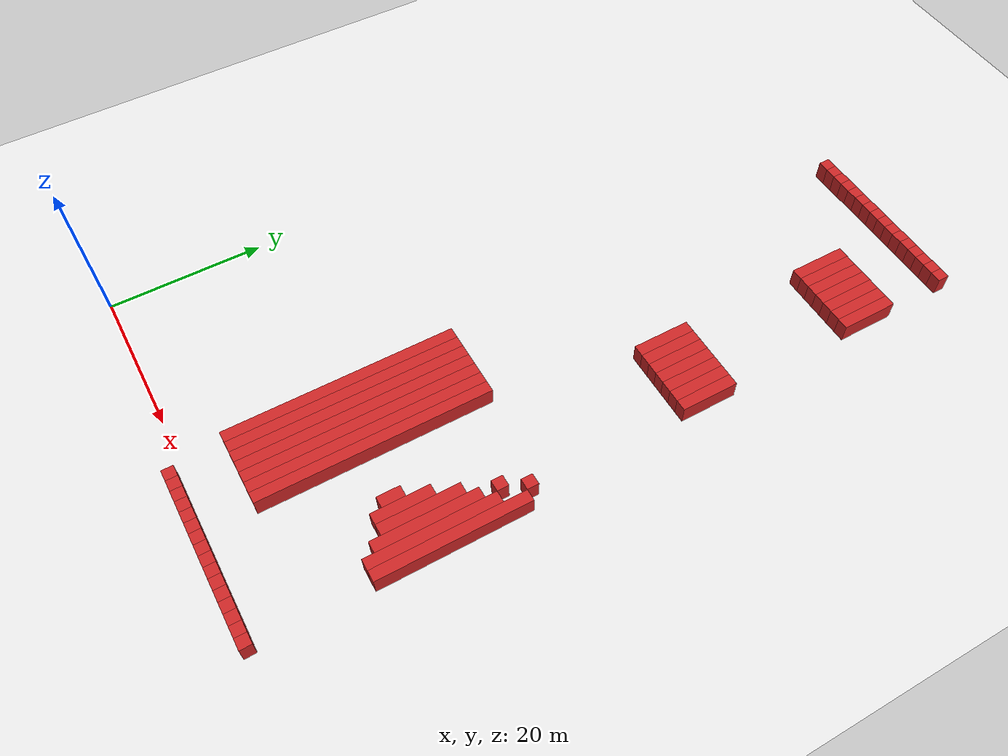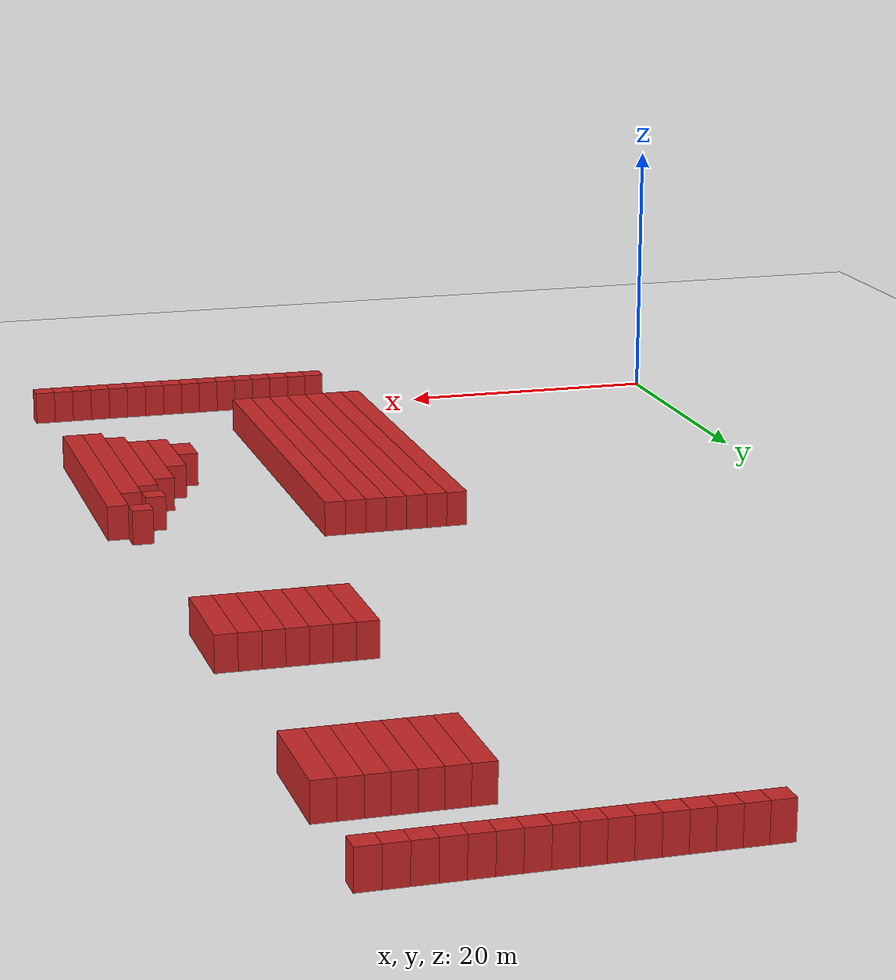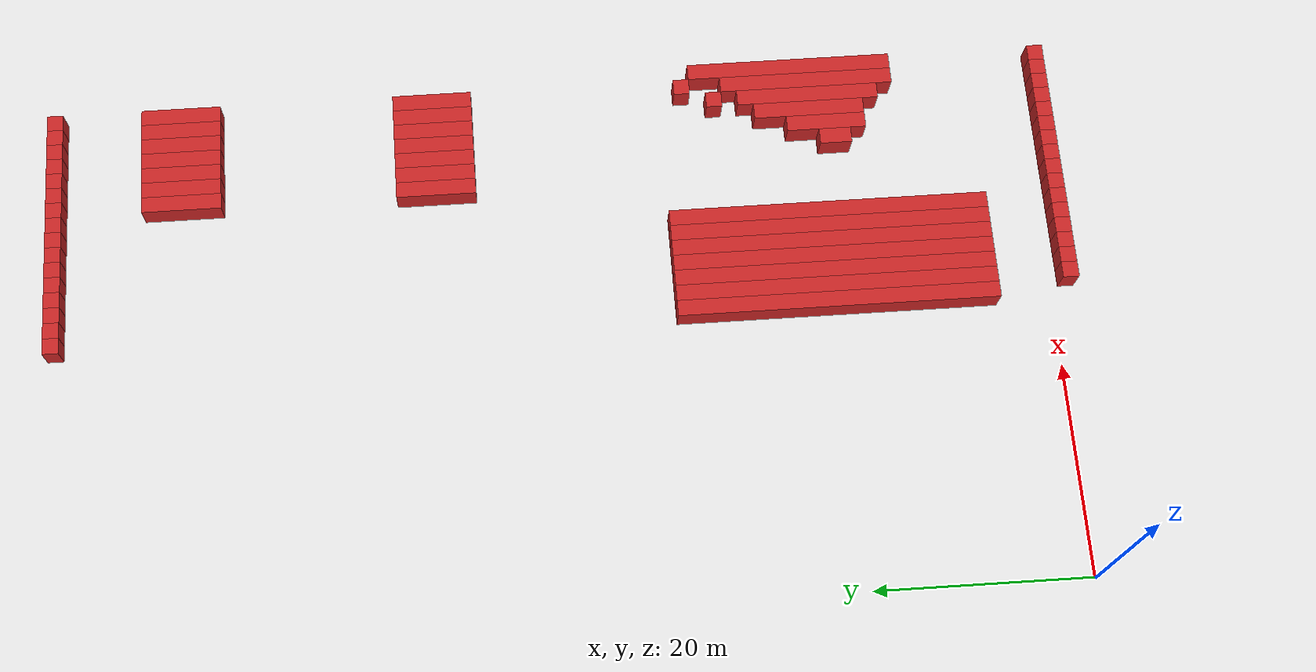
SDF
<sdf version="1.4">
 <world name="1_wall">
  <model name="ground_plane">
   <static>1</static>
   <link name="link">
    <collision name="collision">
     <geometry><plane><normal>0 0 1</normal><size>1000 1000</size></plane></geometry>
     <surface><friction><ode><mu>100</mu><mu2>50</mu2></ode></friction></surface>
    </collision>
    <visual name="visual">
     <cast_shadows>0</cast_shadows>
     <geometry><plane><normal>0 0 1</normal><size>10000 10000</size></plane></geometry>
     <material>
      <script><uri>file://media/materials/scripts/gazebo.material</uri><name>Gazebo/White</name></script>
     </material>
    </visual>
    <velocity_decay><linear>0</linear><angular>0</angular></velocity_decay>
   </link>
  </model>
  <model name="Wall_61">
   <static>1</static>
   <link name="Wall_61">
    <collision name="Wall_Collision_61">
     <geometry><box><size>30.0 1.5 2.5</size></box></geometry>
     <pose>0 0 1.25 0 -0 0</pose>
    </collision>
    <visual name="Wall_Visual_61">
     <pose>0 0 1.25 0 -0 0</pose>
     <geometry><box><size>30.0 1.5 2.5</size></box></geometry>
     <material>
      <script><uri>file://media/materials/scripts/gazebo.material</uri><name>Gazebo/Red</name></script>
     </material>
    </visual>
    <velocity_decay><linear>0</linear><angular>0</angular></velocity_decay>
    <pose>27.0 20.25 0 0 0 1.5707963267948966</pose>
   </link>
  </model>
  <model name="Wall_62">
   <static>1</static>
   <link name="Wall_62">
    <collision name="Wall_Collision_62">
     <geometry><box><size>1.5 1.5 2.5</size></box></geometry>
     <pose>0 0 1.25 0 -0 0</pose>
    </collision>
    <visual name="Wall_Visual_62">
     <pose>0 0 1.25 0 -0 0</pose>
     <geometry><box><size>1.5 1.5 2.5</size></box></geometry>
     <material>
      <script><uri>file://media/materials/scripts/gazebo.material</uri><name>Gazebo/Red</name></script>
     </material>
    </visual>
    <velocity_decay><linear>0</linear><angular>0</angular></velocity_decay>
    <pose>27.0 93.0 0 0 0 1.5707963267948966</pose>
   </link>
  </model>
  <model name="Wall_63">
   <static>1</static>
   <link name="Wall_63">
    <collision name="Wall_Collision_63">
     <geometry><box><size>1.5 1.5 2.5</size></box></geometry>
     <pose>0 0 1.25 0 -0 0</pose>
    </collision>
    <visual name="Wall_Visual_63">
     <pose>0 0 1.25 0 -0 0</pose>
     <geometry><box><size>1.5 1.5 2.5</size></box></geometry>
     <material>
      <script><uri>file://media/materials/scripts/gazebo.material</uri><name>Gazebo/Red</name></script>
     </material>
    </visual>
    <velocity_decay><linear>0</linear><angular>0</angular></velocity_decay>
    <pose>28.5 -1.5 0 0 0 1.5707963267948966</pose>
   </link>
  </model>
  <model name="Wall_64">
   <static>1</static>
   <link name="Wall_64">
    <collision name="Wall_Collision_64">
     <geometry><box><size>30.0 1.5 2.5</size></box></geometry>
     <pose>0 0 1.25 0 -0 0</pose>
    </collision>
    <visual name="Wall_Visual_64">
     <pose>0 0 1.25 0 -0 0</pose>
     <geometry><box><size>30.0 1.5 2.5</size></box></geometry>
     <material>
      <script><uri>file://media/materials/scripts/gazebo.material</uri><name>Gazebo/Red</name></script>
     </material>
    </visual>
    <velocity_decay><linear>0</linear><angular>0</angular></velocity_decay>
    <pose>28.5 20.25 0 0 0 1.5707963267948966</pose>
   </link>
  </model>
  <model name="Wall_65">
   <static>1</static>
   <link name="Wall_65">
    <collision name="Wall_Collision_65">
     <geometry><box><size>1.5 1.5 2.5</size></box></geometry>
     <pose>0 0 1.25 0 -0 0</pose>
    </collision>
    <visual name="Wall_Visual_65">
     <pose>0 0 1.25 0 -0 0</pose>
     <geometry><box><size>1.5 1.5 2.5</size></box></geometry>
     <material>
      <script><uri>file://media/materials/scripts/gazebo.material</uri><name>Gazebo/Red</name></script>
     </material>
    </visual>
    <velocity_decay><linear>0</linear><angular>0</angular></velocity_decay>
    <pose>28.5 93.0 0 0 0 1.5707963267948966</pose>
   </link>
  </model>
  <model name="Wall_66">
   <static>1</static>
   <link name="Wall_66">
    <collision name="Wall_Collision_66">
     <geometry><box><size>1.5 1.5 2.5</size></box></geometry>
     <pose>0 0 1.25 0 -0 0</pose>
    </collision>
    <visual name="Wall_Visual_66">
     <pose>0 0 1.25 0 -0 0</pose>
     <geometry><box><size>1.5 1.5 2.5</size></box></geometry>
     <material>
      <script><uri>file://media/materials/scripts/gazebo.material</uri><name>Gazebo/Red</name></script>
     </material>
    </visual>
    <velocity_decay><linear>0</linear><angular>0</angular></velocity_decay>
    <pose>30.0 -1.5 0 0 0 1.5707963267948966</pose>
   </link>
  </model>
  <model name="Wall_67">
   <static>1</static>
   <link name="Wall_67">
    <collision name="Wall_Collision_67">
     <geometry><box><size>30.0 1.5 2.5</size></box></geometry>
     <pose>0 0 1.25 0 -0 0</pose>
    </collision>
    <visual name="Wall_Visual_67">
     <pose>0 0 1.25 0 -0 0</pose>
     <geometry><box><size>30.0 1.5 2.5</size></box></geometry>
     <material>
      <script><uri>file://media/materials/scripts/gazebo.material</uri><name>Gazebo/Red</name></script>
     </material>
    </visual>
    <velocity_decay><linear>0</linear><angular>0</angular></velocity_decay>
    <pose>30.0 20.25 0 0 0 1.5707963267948966</pose>
   </link>
  </model>
  <model name="Wall_68">
   <static>1</static>
   <link name="Wall_68">
    <collision name="Wall_Collision_68">
     <geometry><box><size>1.5 1.5 2.5</size></box></geometry>
     <pose>0 0 1.25 0 -0 0</pose>
    </collision>
    <visual name="Wall_Visual_68">
     <pose>0 0 1.25 0 -0 0</pose>
     <geometry><box><size>1.5 1.5 2.5</size></box></geometry>
     <material>
      <script><uri>file://media/materials/scripts/gazebo.material</uri><name>Gazebo/Red</name></script>
     </material>
    </visual>
    <velocity_decay><linear>0</linear><angular>0</angular></velocity_decay>
    <pose>30.0 93.0 0 0 0 1.5707963267948966</pose>
   </link>
  </model>
  <model name="Wall_69">
   <static>1</static>
   <link name="Wall_69">
    <collision name="Wall_Collision_69">
     <geometry><box><size>1.5 1.5 2.5</size></box></geometry>
     <pose>0 0 1.25 0 -0 0</pose>
    </collision>
    <visual name="Wall_Visual_69">
     <pose>0 0 1.25 0 -0 0</pose>
     <geometry><box><size>1.5 1.5 2.5</size></box></geometry>
     <material>
      <script><uri>file://media/materials/scripts/gazebo.material</uri><name>Gazebo/Red</name></script>
     </material>
    </visual>
    <velocity_decay><linear>0</linear><angular>0</angular></velocity_decay>
    <pose>31.5 -1.5 0 0 0 1.5707963267948966</pose>
   </link>
  </model>
  <model name="Wall_70">
   <static>1</static>
   <link name="Wall_70">
    <collision name="Wall_Collision_70">
     <geometry><box><size>30.0 1.5 2.5</size></box></geometry>
     <pose>0 0 1.25 0 -0 0</pose>
    </collision>
    <visual name="Wall_Visual_70">
     <pose>0 0 1.25 0 -0 0</pose>
     <geometry><box><size>30.0 1.5 2.5</size></box></geometry>
     <material>
      <script><uri>file://media/materials/scripts/gazebo.material</uri><name>Gazebo/Red</name></script>
     </material>
    </visual>
    <velocity_decay><linear>0</linear><angular>0</angular></velocity_decay>
    <pose>31.5 20.25 0 0 0 1.5707963267948966</pose>
   </link>
  </model>
  <model name="Wall_71">
   <static>1</static>
   <link name="Wall_71">
    <collision name="Wall_Collision_71">
     <geometry><box><size>1.5 1.5 2.5</size></box></geometry>
     <pose>0 0 1.25 0 -0 0</pose>
    </collision>
    <visual name="Wall_Visual_71">
     <pose>0 0 1.25 0 -0 0</pose>
     <geometry><box><size>1.5 1.5 2.5</size></box></geometry>
     <material>
      <script><uri>file://media/materials/scripts/gazebo.material</uri><name>Gazebo/Red</name></script>
     </material>
    </visual>
    <velocity_decay><linear>0</linear><angular>0</angular></velocity_decay>
    <pose>31.5 93.0 0 0 0 1.5707963267948966</pose>
   </link>
  </model>
  <model name="Wall_72">
   <static>1</static>
   <link name="Wall_72">
    <collision name="Wall_Collision_72">
     <geometry><box><size>1.5 1.5 2.5</size></box></geometry>
     <pose>0 0 1.25 0 -0 0</pose>
    </collision>
    <visual name="Wall_Visual_72">
     <pose>0 0 1.25 0 -0 0</pose>
     <geometry><box><size>1.5 1.5 2.5</size></box></geometry>
     <material>
      <script><uri>file://media/materials/scripts/gazebo.material</uri><name>Gazebo/Red</name></script>
     </material>
    </visual>
    <velocity_decay><linear>0</linear><angular>0</angular></velocity_decay>
    <pose>33.0 -1.5 0 0 0 1.5707963267948966</pose>
   </link>
  </model>
  <model name="Wall_73">
   <static>1</static>
   <link name="Wall_73">
    <collision name="Wall_Collision_73">
     <geometry><box><size>30.0 1.5 2.5</size></box></geometry>
     <pose>0 0 1.25 0 -0 0</pose>
    </collision>
    <visual name="Wall_Visual_73">
     <pose>0 0 1.25 0 -0 0</pose>
     <geometry><box><size>30.0 1.5 2.5</size></box></geometry>
     <material>
      <script><uri>file://media/materials/scripts/gazebo.material</uri><name>Gazebo/Red</name></script>
     </material>
    </visual>
    <velocity_decay><linear>0</linear><angular>0</angular></velocity_decay>
    <pose>33.0 20.25 0 0 0 1.5707963267948966</pose>
   </link>
  </model>
  <model name="Wall_74">
   <static>1</static>
   <link name="Wall_74">
    <collision name="Wall_Collision_74">
     <geometry><box><size>1.5 1.5 2.5</size></box></geometry>
     <pose>0 0 1.25 0 -0 0</pose>
    </collision>
    <visual name="Wall_Visual_74">
     <pose>0 0 1.25 0 -0 0</pose>
     <geometry><box><size>1.5 1.5 2.5</size></box></geometry>
     <material>
      <script><uri>file://media/materials/scripts/gazebo.material</uri><name>Gazebo/Red</name></script>
     </material>
    </visual>
    <velocity_decay><linear>0</linear><angular>0</angular></velocity_decay>
    <pose>33.0 93.0 0 0 0 1.5707963267948966</pose>
   </link>
  </model>
  <model name="Wall_75">
   <static>1</static>
   <link name="Wall_75">
    <collision name="Wall_Collision_75">
     <geometry><box><size>1.5 1.5 2.5</size></box></geometry>
     <pose>0 0 1.25 0 -0 0</pose>
    </collision>
    <visual name="Wall_Visual_75">
     <pose>0 0 1.25 0 -0 0</pose>
     <geometry><box><size>1.5 1.5 2.5</size></box></geometry>
     <material>
      <script><uri>file://media/materials/scripts/gazebo.material</uri><name>Gazebo/Red</name></script>
     </material>
    </visual>
    <velocity_decay><linear>0</linear><angular>0</angular></velocity_decay>
    <pose>34.5 -1.5 0 0 0 1.5707963267948966</pose>
   </link>
  </model>
  <model name="Wall_76">
   <static>1</static>
   <link name="Wall_76">
    <collision name="Wall_Collision_76">
     <geometry><box><size>30.0 1.5 2.5</size></box></geometry>
     <pose>0 0 1.25 0 -0 0</pose>
    </collision>
    <visual name="Wall_Visual_76">
     <pose>0 0 1.25 0 -0 0</pose>
     <geometry><box><size>30.0 1.5 2.5</size></box></geometry>
     <material>
      <script><uri>file://media/materials/scripts/gazebo.material</uri><name>Gazebo/Red</name></script>
     </material>
    </visual>
    <velocity_decay><linear>0</linear><angular>0</angular></velocity_decay>
    <pose>34.5 20.25 0 0 0 1.5707963267948966</pose>
   </link>
  </model>
  <model name="Wall_77">
   <static>1</static>
   <link name="Wall_77">
    <collision name="Wall_Collision_77">
     <geometry><box><size>1.5 1.5 2.5</size></box></geometry>
     <pose>0 0 1.25 0 -0 0</pose>
    </collision>
    <visual name="Wall_Visual_77">
     <pose>0 0 1.25 0 -0 0</pose>
     <geometry><box><size>1.5 1.5 2.5</size></box></geometry>
     <material>
      <script><uri>file://media/materials/scripts/gazebo.material</uri><name>Gazebo/Red</name></script>
     </material>
    </visual>
    <velocity_decay><linear>0</linear><angular>0</angular></velocity_decay>
    <pose>34.5 93.0 0 0 0 1.5707963267948966</pose>
   </link>
  </model>
  <model name="Wall_78">
   <static>1</static>
   <link name="Wall_78">
    <collision name="Wall_Collision_78">
     <geometry><box><size>1.5 1.5 2.5</size></box></geometry>
     <pose>0 0 1.25 0 -0 0</pose>
    </collision>
    <visual name="Wall_Visual_78">
     <pose>0 0 1.25 0 -0 0</pose>
     <geometry><box><size>1.5 1.5 2.5</size></box></geometry>
     <material>
      <script><uri>file://media/materials/scripts/gazebo.material</uri><name>Gazebo/Red</name></script>
     </material>
    </visual>
    <velocity_decay><linear>0</linear><angular>0</angular></velocity_decay>
    <pose>36.0 -1.5 0 0 0 1.5707963267948966</pose>
   </link>
  </model>
  <model name="Wall_79">
   <static>1</static>
   <link name="Wall_79">
    <collision name="Wall_Collision_79">
     <geometry><box><size>30.0 1.5 2.5</size></box></geometry>
     <pose>0 0 1.25 0 -0 0</pose>
    </collision>
    <visual name="Wall_Visual_79">
     <pose>0 0 1.25 0 -0 0</pose>
     <geometry><box><size>30.0 1.5 2.5</size></box></geometry>
     <material>
      <script><uri>file://media/materials/scripts/gazebo.material</uri><name>Gazebo/Red</name></script>
     </material>
    </visual>
    <velocity_decay><linear>0</linear><angular>0</angular></velocity_decay>
    <pose>36.0 20.25 0 0 0 1.5707963267948966</pose>
   </link>
  </model>
  <model name="Wall_80">
   <static>1</static>
   <link name="Wall_80">
    <collision name="Wall_Collision_80">
     <geometry><box><size>1.5 1.5 2.5</size></box></geometry>
     <pose>0 0 1.25 0 -0 0</pose>
    </collision>
    <visual name="Wall_Visual_80">
     <pose>0 0 1.25 0 -0 0</pose>
     <geometry><box><size>1.5 1.5 2.5</size></box></geometry>
     <material>
      <script><uri>file://media/materials/scripts/gazebo.material</uri><name>Gazebo/Red</name></script>
     </material>
    </visual>
    <velocity_decay><linear>0</linear><angular>0</angular></velocity_decay>
    <pose>36.0 93.0 0 0 0 1.5707963267948966</pose>
   </link>
  </model>
  <model name="Wall_81">
   <static>1</static>
   <link name="Wall_81">
    <collision name="Wall_Collision_81">
     <geometry><box><size>1.5 1.5 2.5</size></box></geometry>
     <pose>0 0 1.25 0 -0 0</pose>
    </collision>
    <visual name="Wall_Visual_81">
     <pose>0 0 1.25 0 -0 0</pose>
     <geometry><box><size>1.5 1.5 2.5</size></box></geometry>
     <material>
      <script><uri>file://media/materials/scripts/gazebo.material</uri><name>Gazebo/Red</name></script>
     </material>
    </visual>
    <velocity_decay><linear>0</linear><angular>0</angular></velocity_decay>
    <pose>37.5 -1.5 0 0 0 1.5707963267948966</pose>
   </link>
  </model>
  <model name="Wall_82">
   <static>1</static>
   <link name="Wall_82">
    <collision name="Wall_Collision_82">
     <geometry><box><size>1.5 1.5 2.5</size></box></geometry>
     <pose>0 0 1.25 0 -0 0</pose>
    </collision>
    <visual name="Wall_Visual_82">
     <pose>0 0 1.25 0 -0 0</pose>
     <geometry><box><size>1.5 1.5 2.5</size></box></geometry>
     <material>
      <script><uri>file://media/materials/scripts/gazebo.material</uri><name>Gazebo/Red</name></script>
     </material>
    </visual>
    <velocity_decay><linear>0</linear><angular>0</angular></velocity_decay>
    <pose>37.5 93.0 0 0 0 1.5707963267948966</pose>
   </link>
  </model>
  <model name="Wall_83">
   <static>1</static>
   <link name="Wall_83">
    <collision name="Wall_Collision_83">
     <geometry><box><size>1.5 1.5 2.5</size></box></geometry>
     <pose>0 0 1.25 0 -0 0</pose>
    </collision>
    <visual name="Wall_Visual_83">
     <pose>0 0 1.25 0 -0 0</pose>
     <geometry><box><size>1.5 1.5 2.5</size></box></geometry>
     <material>
      <script><uri>file://media/materials/scripts/gazebo.material</uri><name>Gazebo/Red</name></script>
     </material>
    </visual>
    <velocity_decay><linear>0</linear><angular>0</angular></velocity_decay>
    <pose>39.0 -1.5 0 0 0 1.5707963267948966</pose>
   </link>
  </model>
  <model name="Wall_84">
   <static>1</static>
   <link name="Wall_84">
    <collision name="Wall_Collision_84">
     <geometry><box><size>1.5 1.5 2.5</size></box></geometry>
     <pose>0 0 1.25 0 -0 0</pose>
    </collision>
    <visual name="Wall_Visual_84">
     <pose>0 0 1.25 0 -0 0</pose>
     <geometry><box><size>1.5 1.5 2.5</size></box></geometry>
     <material>
      <script><uri>file://media/materials/scripts/gazebo.material</uri><name>Gazebo/Red</name></script>
     </material>
    </visual>
    <velocity_decay><linear>0</linear><angular>0</angular></velocity_decay>
    <pose>39.0 93.0 0 0 0 1.5707963267948966</pose>
   </link>
  </model>
  <model name="Wall_85">
   <static>1</static>
   <link name="Wall_85">
    <collision name="Wall_Collision_85">
     <geometry><box><size>1.5 1.5 2.5</size></box></geometry>
     <pose>0 0 1.25 0 -0 0</pose>
    </collision>
    <visual name="Wall_Visual_85">
     <pose>0 0 1.25 0 -0 0</pose>
     <geometry><box><size>1.5 1.5 2.5</size></box></geometry>
     <material>
      <script><uri>file://media/materials/scripts/gazebo.material</uri><name>Gazebo/Red</name></script>
     </material>
    </visual>
    <velocity_decay><linear>0</linear><angular>0</angular></velocity_decay>
    <pose>40.5 -1.5 0 0 0 1.5707963267948966</pose>
   </link>
  </model>
  <model name="Wall_86">
   <static>1</static>
   <link name="Wall_86">
    <collision name="Wall_Collision_86">
     <geometry><box><size>7.5 1.5 2.5</size></box></geometry>
     <pose>0 0 1.25 0 -0 0</pose>
    </collision>
    <visual name="Wall_Visual_86">
     <pose>0 0 1.25 0 -0 0</pose>
     <geometry><box><size>7.5 1.5 2.5</size></box></geometry>
     <material>
      <script><uri>file://media/materials/scripts/gazebo.material</uri><name>Gazebo/Red</name></script>
     </material>
    </visual>
    <velocity_decay><linear>0</linear><angular>0</angular></velocity_decay>
    <pose>40.5 57.0 0 0 0 1.5707963267948966</pose>
   </link>
  </model>
  <model name="Wall_87">
   <static>1</static>
   <link name="Wall_87">
    <collision name="Wall_Collision_87">
     <geometry><box><size>7.5 1.5 2.5</size></box></geometry>
     <pose>0 0 1.25 0 -0 0</pose>
    </collision>
    <visual name="Wall_Visual_87">
     <pose>0 0 1.25 0 -0 0</pose>
     <geometry><box><size>7.5 1.5 2.5</size></box></geometry>
     <material>
      <script><uri>file://media/materials/scripts/gazebo.material</uri><name>Gazebo/Red</name></script>
     </material>
    </visual>
    <velocity_decay><linear>0</linear><angular>0</angular></velocity_decay>
    <pose>40.5 81.0 0 0 0 1.5707963267948966</pose>
   </link>
  </model>
  <model name="Wall_88">
   <static>1</static>
   <link name="Wall_88">
    <collision name="Wall_Collision_88">
     <geometry><box><size>1.5 1.5 2.5</size></box></geometry>
     <pose>0 0 1.25 0 -0 0</pose>
    </collision>
    <visual name="Wall_Visual_88">
     <pose>0 0 1.25 0 -0 0</pose>
     <geometry><box><size>1.5 1.5 2.5</size></box></geometry>
     <material>
      <script><uri>file://media/materials/scripts/gazebo.material</uri><name>Gazebo/Red</name></script>
     </material>
    </visual>
    <velocity_decay><linear>0</linear><angular>0</angular></velocity_decay>
    <pose>40.5 93.0 0 0 0 1.5707963267948966</pose>
   </link>
  </model>
  <model name="Wall_89">
   <static>1</static>
   <link name="Wall_89">
    <collision name="Wall_Collision_89">
     <geometry><box><size>1.5 1.5 2.5</size></box></geometry>
     <pose>0 0 1.25 0 -0 0</pose>
    </collision>
    <visual name="Wall_Visual_89">
     <pose>0 0 1.25 0 -0 0</pose>
     <geometry><box><size>1.5 1.5 2.5</size></box></geometry>
     <material>
      <script><uri>file://media/materials/scripts/gazebo.material</uri><name>Gazebo/Red</name></script>
     </material>
    </visual>
    <velocity_decay><linear>0</linear><angular>0</angular></velocity_decay>
    <pose>42.0 -1.5 0 0 0 1.5707963267948966</pose>
   </link>
  </model>
  <model name="Wall_90">
   <static>1</static>
   <link name="Wall_90">
    <collision name="Wall_Collision_90">
     <geometry><box><size>7.5 1.5 2.5</size></box></geometry>
     <pose>0 0 1.25 0 -0 0</pose>
    </collision>
    <visual name="Wall_Visual_90">
     <pose>0 0 1.25 0 -0 0</pose>
     <geometry><box><size>7.5 1.5 2.5</size></box></geometry>
     <material>
      <script><uri>file://media/materials/scripts/gazebo.material</uri><name>Gazebo/Red</name></script>
     </material>
    </visual>
    <velocity_decay><linear>0</linear><angular>0</angular></velocity_decay>
    <pose>42.0 57.0 0 0 0 1.5707963267948966</pose>
   </link>
  </model>
  <model name="Wall_91">
   <static>1</static>
   <link name="Wall_91">
    <collision name="Wall_Collision_91">
     <geometry><box><size>7.5 1.5 2.5</size></box></geometry>
     <pose>0 0 1.25 0 -0 0</pose>
    </collision>
    <visual name="Wall_Visual_91">
     <pose>0 0 1.25 0 -0 0</pose>
     <geometry><box><size>7.5 1.5 2.5</size></box></geometry>
     <material>
      <script><uri>file://media/materials/scripts/gazebo.material</uri><name>Gazebo/Red</name></script>
     </material>
    </visual>
    <velocity_decay><linear>0</linear><angular>0</angular></velocity_decay>
    <pose>42.0 81.0 0 0 0 1.5707963267948966</pose>
   </link>
  </model>
  <model name="Wall_92">
   <static>1</static>
   <link name="Wall_92">
    <collision name="Wall_Collision_92">
     <geometry><box><size>1.5 1.5 2.5</size></box></geometry>
     <pose>0 0 1.25 0 -0 0</pose>
    </collision>
    <visual name="Wall_Visual_92">
     <pose>0 0 1.25 0 -0 0</pose>
     <geometry><box><size>1.5 1.5 2.5</size></box></geometry>
     <material>
      <script><uri>file://media/materials/scripts/gazebo.material</uri><name>Gazebo/Red</name></script>
     </material>
    </visual>
    <velocity_decay><linear>0</linear><angular>0</angular></velocity_decay>
    <pose>42.0 93.0 0 0 0 1.5707963267948966</pose>
   </link>
  </model>
  <model name="Wall_93">
   <static>1</static>
   <link name="Wall_93">
    <collision name="Wall_Collision_93">
     <geometry><box><size>1.5 1.5 2.5</size></box></geometry>
     <pose>0 0 1.25 0 -0 0</pose>
    </collision>
    <visual name="Wall_Visual_93">
     <pose>0 0 1.25 0 -0 0</pose>
     <geometry><box><size>1.5 1.5 2.5</size></box></geometry>
     <material>
      <script><uri>file://media/materials/scripts/gazebo.material</uri><name>Gazebo/Red</name></script>
     </material>
    </visual>
    <velocity_decay><linear>0</linear><angular>0</angular></velocity_decay>
    <pose>43.5 -1.5 0 0 0 1.5707963267948966</pose>
   </link>
  </model>
  <model name="Wall_94">
   <static>1</static>
   <link name="Wall_94">
    <collision name="Wall_Collision_94">
     <geometry><box><size>3.0 1.5 2.5</size></box></geometry>
     <pose>0 0 1.25 0 -0 0</pose>
    </collision>
    <visual name="Wall_Visual_94">
     <pose>0 0 1.25 0 -0 0</pose>
     <geometry><box><size>3.0 1.5 2.5</size></box></geometry>
     <material>
      <script><uri>file://media/materials/scripts/gazebo.material</uri><name>Gazebo/Red</name></script>
     </material>
    </visual>
    <velocity_decay><linear>0</linear><angular>0</angular></velocity_decay>
    <pose>43.5 18.75 0 0 0 1.5707963267948966</pose>
   </link>
  </model>
  <model name="Wall_95">
   <static>1</static>
   <link name="Wall_95">
    <collision name="Wall_Collision_95">
     <geometry><box><size>7.5 1.5 2.5</size></box></geometry>
     <pose>0 0 1.25 0 -0 0</pose>
    </collision>
    <visual name="Wall_Visual_95">
     <pose>0 0 1.25 0 -0 0</pose>
     <geometry><box><size>7.5 1.5 2.5</size></box></geometry>
     <material>
      <script><uri>file://media/materials/scripts/gazebo.material</uri><name>Gazebo/Red</name></script>
     </material>
    </visual>
    <velocity_decay><linear>0</linear><angular>0</angular></velocity_decay>
    <pose>43.5 57.0 0 0 0 1.5707963267948966</pose>
   </link>
  </model>
  <model name="Wall_96">
   <static>1</static>
   <link name="Wall_96">
    <collision name="Wall_Collision_96">
     <geometry><box><size>7.5 1.5 2.5</size></box></geometry>
     <pose>0 0 1.25 0 -0 0</pose>
    </collision>
    <visual name="Wall_Visual_96">
     <pose>0 0 1.25 0 -0 0</pose>
     <geometry><box><size>7.5 1.5 2.5</size></box></geometry>
     <material>
      <script><uri>file://media/materials/scripts/gazebo.material</uri><name>Gazebo/Red</name></script>
     </material>
    </visual>
    <velocity_decay><linear>0</linear><angular>0</angular></velocity_decay>
    <pose>43.5 81.0 0 0 0 1.5707963267948966</pose>
   </link>
  </model>
  <model name="Wall_97">
   <static>1</static>
   <link name="Wall_97">
    <collision name="Wall_Collision_97">
     <geometry><box><size>1.5 1.5 2.5</size></box></geometry>
     <pose>0 0 1.25 0 -0 0</pose>
    </collision>
    <visual name="Wall_Visual_97">
     <pose>0 0 1.25 0 -0 0</pose>
     <geometry><box><size>1.5 1.5 2.5</size></box></geometry>
     <material>
      <script><uri>file://media/materials/scripts/gazebo.material</uri><name>Gazebo/Red</name></script>
     </material>
    </visual>
    <velocity_decay><linear>0</linear><angular>0</angular></velocity_decay>
    <pose>43.5 93.0 0 0 0 1.5707963267948966</pose>
   </link>
  </model>
  <model name="Wall_98">
   <static>1</static>
   <link name="Wall_98">
    <collision name="Wall_Collision_98">
     <geometry><box><size>1.5 1.5 2.5</size></box></geometry>
     <pose>0 0 1.25 0 -0 0</pose>
    </collision>
    <visual name="Wall_Visual_98">
     <pose>0 0 1.25 0 -0 0</pose>
     <geometry><box><size>1.5 1.5 2.5</size></box></geometry>
     <material>
      <script><uri>file://media/materials/scripts/gazebo.material</uri><name>Gazebo/Red</name></script>
     </material>
    </visual>
    <velocity_decay><linear>0</linear><angular>0</angular></velocity_decay>
    <pose>45.0 -1.5 0 0 0 1.5707963267948966</pose>
   </link>
  </model>
  <model name="Wall_99">
   <static>1</static>
   <link name="Wall_99">
    <collision name="Wall_Collision_99">
     <geometry><box><size>7.5 1.5 2.5</size></box></geometry>
     <pose>0 0 1.25 0 -0 0</pose>
    </collision>
    <visual name="Wall_Visual_99">
     <pose>0 0 1.25 0 -0 0</pose>
     <geometry><box><size>7.5 1.5 2.5</size></box></geometry>
     <material>
      <script><uri>file://media/materials/scripts/gazebo.material</uri><name>Gazebo/Red</name></script>
     </material>
    </visual>
    <velocity_decay><linear>0</linear><angular>0</angular></velocity_decay>
    <pose>45.0 19.5 0 0 0 1.5707963267948966</pose>
   </link>
  </model>
  <model name="Wall_100">
   <static>1</static>
   <link name="Wall_100">
    <collision name="Wall_Collision_100">
     <geometry><box><size>7.5 1.5 2.5</size></box></geometry>
     <pose>0 0 1.25 0 -0 0</pose>
    </collision>
    <visual name="Wall_Visual_100">
     <pose>0 0 1.25 0 -0 0</pose>
     <geometry><box><size>7.5 1.5 2.5</size></box></geometry>
     <material>
      <script><uri>file://media/materials/scripts/gazebo.material</uri><name>Gazebo/Red</name></script>
     </material>
    </visual>
    <velocity_decay><linear>0</linear><angular>0</angular></velocity_decay>
    <pose>45.0 57.0 0 0 0 1.5707963267948966</pose>
   </link>
  </model>
  <model name="Wall_101">
   <static>1</static>
   <link name="Wall_101">
    <collision name="Wall_Collision_101">
     <geometry><box><size>7.5 1.5 2.5</size></box></geometry>
     <pose>0 0 1.25 0 -0 0</pose>
    </collision>
    <visual name="Wall_Visual_101">
     <pose>0 0 1.25 0 -0 0</pose>
     <geometry><box><size>7.5 1.5 2.5</size></box></geometry>
     <material>
      <script><uri>file://media/materials/scripts/gazebo.material</uri><name>Gazebo/Red</name></script>
     </material>
    </visual>
    <velocity_decay><linear>0</linear><angular>0</angular></velocity_decay>
    <pose>45.0 81.0 0 0 0 1.5707963267948966</pose>
   </link>
  </model>
  <model name="Wall_102">
   <static>1</static>
   <link name="Wall_102">
    <collision name="Wall_Collision_102">
     <geometry><box><size>1.5 1.5 2.5</size></box></geometry>
     <pose>0 0 1.25 0 -0 0</pose>
    </collision>
    <visual name="Wall_Visual_102">
     <pose>0 0 1.25 0 -0 0</pose>
     <geometry><box><size>1.5 1.5 2.5</size></box></geometry>
     <material>
      <script><uri>file://media/materials/scripts/gazebo.material</uri><name>Gazebo/Red</name></script>
     </material>
    </visual>
    <velocity_decay><linear>0</linear><angular>0</angular></velocity_decay>
    <pose>45.0 93.0 0 0 0 1.5707963267948966</pose>
   </link>
  </model>
  <model name="Wall_103">
   <static>1</static>
   <link name="Wall_103">
    <collision name="Wall_Collision_103">
     <geometry><box><size>1.5 1.5 2.5</size></box></geometry>
     <pose>0 0 1.25 0 -0 0</pose>
    </collision>
    <visual name="Wall_Visual_103">
     <pose>0 0 1.25 0 -0 0</pose>
     <geometry><box><size>1.5 1.5 2.5</size></box></geometry>
     <material>
      <script><uri>file://media/materials/scripts/gazebo.material</uri><name>Gazebo/Red</name></script>
     </material>
    </visual>
    <velocity_decay><linear>0</linear><angular>0</angular></velocity_decay>
    <pose>46.5 -1.5 0 0 0 1.5707963267948966</pose>
   </link>
  </model>
  <model name="Wall_104">
   <static>1</static>
   <link name="Wall_104">
    <collision name="Wall_Collision_104">
     <geometry><box><size>10.5 1.5 2.5</size></box></geometry>
     <pose>0 0 1.25 0 -0 0</pose>
    </collision>
    <visual name="Wall_Visual_104">
     <pose>0 0 1.25 0 -0 0</pose>
     <geometry><box><size>10.5 1.5 2.5</size></box></geometry>
     <material>
      <script><uri>file://media/materials/scripts/gazebo.material</uri><name>Gazebo/Red</name></script>
     </material>
    </visual>
    <velocity_decay><linear>0</linear><angular>0</angular></velocity_decay>
    <pose>46.5 21.0 0 0 0 1.5707963267948966</pose>
   </link>
  </model>
  <model name="Wall_105">
   <static>1</static>
   <link name="Wall_105">
    <collision name="Wall_Collision_105">
     <geometry><box><size>7.5 1.5 2.5</size></box></geometry>
     <pose>0 0 1.25 0 -0 0</pose>
    </collision>
    <visual name="Wall_Visual_105">
     <pose>0 0 1.25 0 -0 0</pose>
     <geometry><box><size>7.5 1.5 2.5</size></box></geometry>
     <material>
      <script><uri>file://media/materials/scripts/gazebo.material</uri><name>Gazebo/Red</name></script>
     </material>
    </visual>
    <velocity_decay><linear>0</linear><angular>0</angular></velocity_decay>
    <pose>46.5 57.0 0 0 0 1.5707963267948966</pose>
   </link>
  </model>
  <model name="Wall_106">
   <static>1</static>
   <link name="Wall_106">
    <collision name="Wall_Collision_106">
     <geometry><box><size>7.5 1.5 2.5</size></box></geometry>
     <pose>0 0 1.25 0 -0 0</pose>
    </collision>
    <visual name="Wall_Visual_106">
     <pose>0 0 1.25 0 -0 0</pose>
     <geometry><box><size>7.5 1.5 2.5</size></box></geometry>
     <material>
      <script><uri>file://media/materials/scripts/gazebo.material</uri><name>Gazebo/Red</name></script>
     </material>
    </visual>
    <velocity_decay><linear>0</linear><angular>0</angular></velocity_decay>
    <pose>46.5 81.0 0 0 0 1.5707963267948966</pose>
   </link>
  </model>
  <model name="Wall_107">
   <static>1</static>
   <link name="Wall_107">
    <collision name="Wall_Collision_107">
     <geometry><box><size>1.5 1.5 2.5</size></box></geometry>
     <pose>0 0 1.25 0 -0 0</pose>
    </collision>
    <visual name="Wall_Visual_107">
     <pose>0 0 1.25 0 -0 0</pose>
     <geometry><box><size>1.5 1.5 2.5</size></box></geometry>
     <material>
      <script><uri>file://media/materials/scripts/gazebo.material</uri><name>Gazebo/Red</name></script>
     </material>
    </visual>
    <velocity_decay><linear>0</linear><angular>0</angular></velocity_decay>
    <pose>46.5 93.0 0 0 0 1.5707963267948966</pose>
   </link>
  </model>
  <model name="Wall_108">
   <static>1</static>
   <link name="Wall_108">
    <collision name="Wall_Collision_108">
     <geometry><box><size>1.5 1.5 2.5</size></box></geometry>
     <pose>0 0 1.25 0 -0 0</pose>
    </collision>
    <visual name="Wall_Visual_108">
     <pose>0 0 1.25 0 -0 0</pose>
     <geometry><box><size>1.5 1.5 2.5</size></box></geometry>
     <material>
      <script><uri>file://media/materials/scripts/gazebo.material</uri><name>Gazebo/Red</name></script>
     </material>
    </visual>
    <velocity_decay><linear>0</linear><angular>0</angular></velocity_decay>
    <pose>48.0 -1.5 0 0 0 1.5707963267948966</pose>
   </link>
  </model>
  <model name="Wall_109">
   <static>1</static>
   <link name="Wall_109">
    <collision name="Wall_Collision_109">
     <geometry><box><size>13.5 1.5 2.5</size></box></geometry>
     <pose>0 0 1.25 0 -0 0</pose>
    </collision>
    <visual name="Wall_Visual_109">
     <pose>0 0 1.25 0 -0 0</pose>
     <geometry><box><size>13.5 1.5 2.5</size></box></geometry>
     <material>
      <script><uri>file://media/materials/scripts/gazebo.material</uri><name>Gazebo/Red</name></script>
     </material>
    </visual>
    <velocity_decay><linear>0</linear><angular>0</angular></velocity_decay>
    <pose>48.0 21.0 0 0 0 1.5707963267948966</pose>
   </link>
  </model>
  <model name="Wall_110">
   <static>1</static>
   <link name="Wall_110">
    <collision name="Wall_Collision_110">
     <geometry><box><size>1.5 1.5 2.5</size></box></geometry>
     <pose>0 0 1.25 0 -0 0</pose>
    </collision>
    <visual name="Wall_Visual_110">
     <pose>0 0 1.25 0 -0 0</pose>
     <geometry><box><size>1.5 1.5 2.5</size></box></geometry>
     <material>
      <script><uri>file://media/materials/scripts/gazebo.material</uri><name>Gazebo/Red</name></script>
     </material>
    </visual>
    <velocity_decay><linear>0</linear><angular>0</angular></velocity_decay>
    <pose>48.0 30.0 0 0 0 1.5707963267948966</pose>
   </link>
  </model>
  <model name="Wall_111">
   <static>1</static>
   <link name="Wall_111">
    <collision name="Wall_Collision_111">
     <geometry><box><size>7.5 1.5 2.5</size></box></geometry>
     <pose>0 0 1.25 0 -0 0</pose>
    </collision>
    <visual name="Wall_Visual_111">
     <pose>0 0 1.25 0 -0 0</pose>
     <geometry><box><size>7.5 1.5 2.5</size></box></geometry>
     <material>
      <script><uri>file://media/materials/scripts/gazebo.material</uri><name>Gazebo/Red</name></script>
     </material>
    </visual>
    <velocity_decay><linear>0</linear><angular>0</angular></velocity_decay>
    <pose>48.0 57.0 0 0 0 1.5707963267948966</pose>
   </link>
  </model>
  <model name="Wall_112">
   <static>1</static>
   <link name="Wall_112">
    <collision name="Wall_Collision_112">
     <geometry><box><size>7.5 1.5 2.5</size></box></geometry>
     <pose>0 0 1.25 0 -0 0</pose>
    </collision>
    <visual name="Wall_Visual_112">
     <pose>0 0 1.25 0 -0 0</pose>
     <geometry><box><size>7.5 1.5 2.5</size></box></geometry>
     <material>
      <script><uri>file://media/materials/scripts/gazebo.material</uri><name>Gazebo/Red</name></script>
     </material>
    </visual>
    <velocity_decay><linear>0</linear><angular>0</angular></velocity_decay>
    <pose>48.0 81.0 0 0 0 1.5707963267948966</pose>
   </link>
  </model>
  <model name="Wall_113">
   <static>1</static>
   <link name="Wall_113">
    <collision name="Wall_Collision_113">
     <geometry><box><size>1.5 1.5 2.5</size></box></geometry>
     <pose>0 0 1.25 0 -0 0</pose>
    </collision>
    <visual name="Wall_Visual_113">
     <pose>0 0 1.25 0 -0 0</pose>
     <geometry><box><size>1.5 1.5 2.5</size></box></geometry>
     <material>
      <script><uri>file://media/materials/scripts/gazebo.material</uri><name>Gazebo/Red</name></script>
     </material>
    </visual>
    <velocity_decay><linear>0</linear><angular>0</angular></velocity_decay>
    <pose>48.0 93.0 0 0 0 1.5707963267948966</pose>
   </link>
  </model>
  <model name="Wall_114">
   <static>1</static>
   <link name="Wall_114">
    <collision name="Wall_Collision_114">
     <geometry><box><size>1.5 1.5 2.5</size></box></geometry>
     <pose>0 0 1.25 0 -0 0</pose>
    </collision>
    <visual name="Wall_Visual_114">
     <pose>0 0 1.25 0 -0 0</pose>
     <geometry><box><size>1.5 1.5 2.5</size></box></geometry>
     <material>
      <script><uri>file://media/materials/scripts/gazebo.material</uri><name>Gazebo/Red</name></script>
     </material>
    </visual>
    <velocity_decay><linear>0</linear><angular>0</angular></velocity_decay>
    <pose>49.5 -1.5 0 0 0 1.5707963267948966</pose>
   </link>
  </model>
  <model name="Wall_115">
   <static>1</static>
   <link name="Wall_115">
    <collision name="Wall_Collision_115">
     <geometry><box><size>16.5 1.5 2.5</size></box></geometry>
     <pose>0 0 1.25 0 -0 0</pose>
    </collision>
    <visual name="Wall_Visual_115">
     <pose>0 0 1.25 0 -0 0</pose>
     <geometry><box><size>16.5 1.5 2.5</size></box></geometry>
     <material>
      <script><uri>file://media/materials/scripts/gazebo.material</uri><name>Gazebo/Red</name></script>
     </material>
    </visual>
    <velocity_decay><linear>0</linear><angular>0</angular></velocity_decay>
    <pose>49.5 21.0 0 0 0 1.5707963267948966</pose>
   </link>
  </model>
  <model name="Wall_116">
   <static>1</static>
   <link name="Wall_116">
    <collision name="Wall_Collision_116">
     <geometry><box><size>1.5 1.5 2.5</size></box></geometry>
     <pose>0 0 1.25 0 -0 0</pose>
    </collision>
    <visual name="Wall_Visual_116">
     <pose>0 0 1.25 0 -0 0</pose>
     <geometry><box><size>1.5 1.5 2.5</size></box></geometry>
     <material>
      <script><uri>file://media/materials/scripts/gazebo.material</uri><name>Gazebo/Red</name></script>
     </material>
    </visual>
    <velocity_decay><linear>0</linear><angular>0</angular></velocity_decay>
    <pose>49.5 33.0 0 0 0 1.5707963267948966</pose>
   </link>
  </model>
  <model name="Wall_117">
   <static>1</static>
   <link name="Wall_117">
    <collision name="Wall_Collision_117">
     <geometry><box><size>7.5 1.5 2.5</size></box></geometry>
     <pose>0 0 1.25 0 -0 0</pose>
    </collision>
    <visual name="Wall_Visual_117">
     <pose>0 0 1.25 0 -0 0</pose>
     <geometry><box><size>7.5 1.5 2.5</size></box></geometry>
     <material>
      <script><uri>file://media/materials/scripts/gazebo.material</uri><name>Gazebo/Red</name></script>
     </material>
    </visual>
    <velocity_decay><linear>0</linear><angular>0</angular></velocity_decay>
    <pose>49.5 57.0 0 0 0 1.5707963267948966</pose>
   </link>
  </model>
  <model name="Wall_118">
   <static>1</static>
   <link name="Wall_118">
    <collision name="Wall_Collision_118">
     <geometry><box><size>7.5 1.5 2.5</size></box></geometry>
     <pose>0 0 1.25 0 -0 0</pose>
    </collision>
    <visual name="Wall_Visual_118">
     <pose>0 0 1.25 0 -0 0</pose>
     <geometry><box><size>7.5 1.5 2.5</size></box></geometry>
     <material>
      <script><uri>file://media/materials/scripts/gazebo.material</uri><name>Gazebo/Red</name></script>
     </material>
    </visual>
    <velocity_decay><linear>0</linear><angular>0</angular></velocity_decay>
    <pose>49.5 81.0 0 0 0 1.5707963267948966</pose>
   </link>
  </model>
  <model name="Wall_119">
   <static>1</static>
   <link name="Wall_119">
    <collision name="Wall_Collision_119">
     <geometry><box><size>1.5 1.5 2.5</size></box></geometry>
     <pose>0 0 1.25 0 -0 0</pose>
    </collision>
    <visual name="Wall_Visual_119">
     <pose>0 0 1.25 0 -0 0</pose>
     <geometry><box><size>1.5 1.5 2.5</size></box></geometry>
     <material>
      <script><uri>file://media/materials/scripts/gazebo.material</uri><name>Gazebo/Red</name></script>
     </material>
    </visual>
    <velocity_decay><linear>0</linear><angular>0</angular></velocity_decay>
    <pose>49.5 93.0 0 0 0 1.5707963267948966</pose>
   </link>
  </model>
  <model name="Wall_120">
   <static>1</static>
   <link name="Wall_120">
    <collision name="Wall_Collision_120">
     <geometry><box><size>1.5 1.5 2.5</size></box></geometry>
     <pose>0 0 1.25 0 -0 0</pose>
    </collision>
    <visual name="Wall_Visual_120">
     <pose>0 0 1.25 0 -0 0</pose>
     <geometry><box><size>1.5 1.5 2.5</size></box></geometry>
     <material>
      <script><uri>file://media/materials/scripts/gazebo.material</uri><name>Gazebo/Red</name></script>
     </material>
    </visual>
    <velocity_decay><linear>0</linear><angular>0</angular></velocity_decay>
    <pose>51.0 -1.5 0 0 0 1.5707963267948966</pose>
   </link>
  </model>
  <model name="Wall_121">
   <static>1</static>
   <link name="Wall_121">
    <collision name="Wall_Collision_121">
     <geometry><box><size>19.5 1.5 2.5</size></box></geometry>
     <pose>0 0 1.25 0 -0 0</pose>
    </collision>
    <visual name="Wall_Visual_121">
     <pose>0 0 1.25 0 -0 0</pose>
     <geometry><box><size>19.5 1.5 2.5</size></box></geometry>
     <material>
      <script><uri>file://media/materials/scripts/gazebo.material</uri><name>Gazebo/Red</name></script>
     </material>
    </visual>
    <velocity_decay><linear>0</linear><angular>0</angular></velocity_decay>
    <pose>51.0 22.5 0 0 0 1.5707963267948966</pose>
   </link>
  </model>
 </world>
</sdf>
